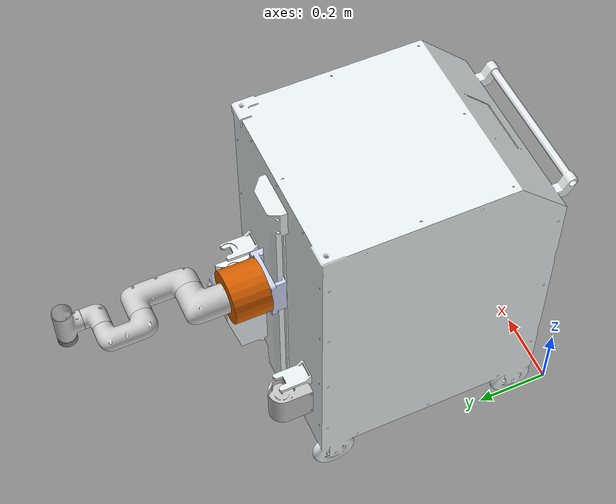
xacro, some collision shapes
<?xml version='1.0' encoding='utf-8'?>
<robot xmlns:xacro="http://ros.org/wiki/xacro" name="mycobot_pro">

  <xacro:macro name="base_arm_macro">
      <xacro:arg name="ros_namespace" default="mycobot_pro"/>
      <xacro:arg name="attach_to" default="robot_arm_mount"/>
      <xacro:arg name="camera_sensor" default="True"/>

      <!-- load base -->
      <xacro:include filename="$(find arm_plus_base_description)/urdf/abluo_urdf_1.xacro"/>

      <!-- load mycobot_pro robot attach to base -->
      <xacro:include filename="$(find arm_plus_base_description)/urdf/mycobot_robot_macro.xacro" />

       <!-- include gazebo transmissions -->
       <xacro:include filename="$(find arm_plus_base_description)/urdf/arm_plus_base.gazebo.xacro"/>
      <xacro:mycobot_pro_robot_macro camera_sensor="$(arg camera_sensor)" attach_to="$(arg attach_to)" xyz="0 0.015 0" rpy="-1.5707 1.5707 0"/>
  </xacro:macro>
  <xacro:base_arm_macro/>

</robot>

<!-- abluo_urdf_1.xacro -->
<robot xmlns:xacro="http://www.ros.org/wiki/xacro" name="abluo_urdf_1">
  <xacro:property name="width" value=".2" />
  <link name="base_link">
    <inertial>
      <origin xyz="0.314368340132374 0.377555022857893 0.400452017692568" rpy="0 0 0" />
      <mass value="30" />
      <inertia ixx="0.54665417885733" ixy="1.4238821137223E-07" ixz="-0.000131159040413172" iyy="0.46363983536376" iyz="-0.00931413578840215" izz="0.256005962598474" />
    </inertial>
    <visual>
      <origin xyz="0 0 0" rpy="0 0 0" />
      <geometry>
        <mesh filename="package://abluo_urdf_1/meshes/base_link.STL" />
      </geometry>
      <material name="">
        <color rgba="0.898039215686275 0.92156862745098 0.929411764705882 1" />
      </material>
    </visual>
    <collision>
      <origin xyz="0 0 0" rpy="0 0 0" />
      <geometry>
        <mesh filename="package://abluo_urdf_1/meshes/base_link.STL" />
      </geometry>
    </collision>
  </link>
  <link name="tool_holder">
    <inertial>
      <origin xyz="-5.4328E-05 0.035446 -0.00021215" rpy="0 0 0" />
      <mass value="0.1248" />
      <inertia ixx="0.0001414" ixy="-1.5081E-07" ixz="1.4383E-09" iyy="0.00012456" iyz="6.236E-07" izz="0.00022858" />
    </inertial>
    <visual>
      <origin xyz="0 0 0" rpy="0 0 0" />
      <geometry>
        <mesh filename="package://abluo_urdf_1/meshes/tool_holder.STL" />
      </geometry>
      <material name="">
        <color rgba="1 1 1 1" />
      </material>
    </visual>
    <collision>
      <origin xyz="0 0 0" rpy="0 0 0" />
      <geometry>
        <mesh filename="package://abluo_urdf_1/meshes/tool_holder.STL" />
      </geometry>
    </collision>
  </link>
  <joint name="tool_holder_to_trolley" type="fixed">
    <origin xyz="0.47532 0.67022 0.32681" rpy="0 0 0" />
    <parent link="base_link" />
    <child link="tool_holder" />
    <axis xyz="0 0 0" />
  </joint>
  <link name="bin">
    <inertial>
      <origin xyz="0.063 -0.071426 0.092008" rpy="0 0 0" />
      <mass value="0.26632" />
      <inertia ixx="0.0014744" ixy="8.8967E-19" ixz="4.6847E-18" iyy="0.0017467" iyz="-6.7797E-05" izz="0.0010769" />
    </inertial>
    <visual>
      <origin xyz="0 0 0" rpy="0 0 0" />
      <geometry>
        <mesh filename="package://abluo_urdf_1/meshes/bin.STL" />
      </geometry>
      <material name="">
        <color rgba="0.79216 0.81961 0.93333 1" />
      </material>
    </visual>
    <collision>
      <origin xyz="0 0 0" rpy="0 0 0" />
      <geometry>
        <mesh filename="package://abluo_urdf_1/meshes/bin.STL" />
      </geometry>
    </collision>
  </link>
  <joint name="bin_to_trolley" type="fixed">
    <origin xyz="0.41232 0.78622 0.051806" rpy="0 0 0" />
    <parent link="base_link" />
    <child link="bin" />
    <axis xyz="0 0 0" />
  </joint>
  <link name="refill">
    <inertial>
      <origin xyz="-0.099098 -0.032213 0.058669" rpy="0 0 0" />
      <mass value="0.48444" />
      <inertia ixx="0.00085088" ixy="1.1098E-17" ixz="1.6448E-18" iyy="0.00073833" iyz="3.4076E-05" izz="0.00065736" />
    </inertial>
    <visual>
      <origin xyz="0 0 0" rpy="0 0 0" />
      <geometry>
        <mesh filename="package://abluo_urdf_1/meshes/refill.STL" />
      </geometry>
      <material name="">
        <color rgba="0.75294 0.75294 0.75294 1" />
      </material>
    </visual>
    <collision>
      <origin xyz="0 0 0" rpy="0 0 0" />
      <geometry>
        <mesh filename="package://abluo_urdf_1/meshes/refill.STL" />
      </geometry>
    </collision>
  </link>
  <joint name="refill_to_trolley" type="fixed">
    <origin xyz="0.23641 0.73898 0.11878" rpy="0 0 0" />
    <parent link="base_link" />
    <child link="refill" />
    <axis xyz="0 0 0" />
  </joint>
  <link name="robot_arm_mount">
    <inertial>
      <origin xyz="0.01059 -0.0039437 -0.002491" rpy="0 0 0" />
      <mass value="0.42315" />
      <inertia ixx="0.00050278" ixy="6.7967E-05" ixz="-1.7444E-05" iyy="0.0011978" iyz="3.9255E-06" izz="0.00077881" />
    </inertial>
    <visual>
      <origin xyz="0 0 0" rpy="0 0 0" />
      <geometry>
        <mesh filename="package://abluo_urdf_1/meshes/robot_arm_mount.STL" />
      </geometry>
      <material name="">
        <color rgba="0.79216 0.81961 0.93333 1" />
      </material>
    </visual>
    <collision>
      <origin xyz="0 0 0" rpy="0 0 0" />
      <geometry>
        <mesh filename="package://abluo_urdf_1/meshes/robot_arm_mount.STL" />
      </geometry>
    </collision>
  </link>
  <joint name="robot_arm_mount_to_actuator" type="prismatic">
    <origin xyz="0.30617 0.70397 0.49087" rpy="0 0 0" />
    <parent link="base_link" />
    <child link="robot_arm_mount" />
    <axis xyz="0 0 1" />
    <limit lower="-0.2" upper="0.18" effort="100000" velocity="0.03" />
  </joint>
</robot>

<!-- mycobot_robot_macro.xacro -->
<robot xmlns:xacro="http://ros.org/wiki/xacro">
  <xacro:macro name="mycobot_pro_robot_macro" params="prefix:='' attach_to:='world' xyz:='0 0 0' rpy:='0 0 0' camera_sensor:=False ">

    <!-- include mycobot relative macros: -->
    <xacro:include filename="$(find arm_plus_base_description)/urdf/320_urdf/mycobot_pro_320.urdf" />

    <!-- add one world link if no 'attach_to' specified  -->
    <xacro:if value="${attach_to == 'world'}">
      <link name="world"/>
    </xacro:if>

    <joint name="${attach_to}_base_joint" type="fixed">
      <parent link="${attach_to}" />
      <child link = "base" />
      <origin xyz="${xyz}" rpy="${rpy}" />
    </joint>

  </xacro:macro>
</robot>

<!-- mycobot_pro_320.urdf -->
<robot xmlns:xacro="http://www.ros.org/wiki/xacro" name="mycobot_pro">
  <xacro:property name="width" value=".2" />

  <link name="base">
    <visual>
      <geometry>
        <mesh filename="package://mycobot_description/urdf/320_urdf/base.dae" />
      </geometry>
      <origin xyz="0 0 0 " rpy=" 0 0 0" />
    </visual>
    <collision>
      <origin xyz="0 0 0.05 " rpy=" 0 0 0" />
      <geometry>
        <cylinder length="0.102" radius="0.0725" />
      </geometry>
    </collision>
    <inertial>
      <mass value="0.92353" />
      <inertia ixx="1.0" ixy="0.0" ixz="0.0" iyy="1.0" iyz="0.0" izz="1.0" />
    </inertial>
  </link>

  <link name="link1">
    <visual>
      <geometry>
        <mesh filename="package://mycobot_description/urdf/320_urdf/link1.dae" />
      </geometry>
      <origin xyz="0 0 0 " rpy=" 0 0 0" />
    </visual>
    <collision>
      <origin xyz="0 0 -0.02 " rpy=" 0 0 0" />
      <geometry>
        <cylinder length="0.106" radius="0.043" />
      </geometry>
    </collision>
    <inertial>
      <mass value="0.3331" />
      <inertia ixx="1.0" ixy="0.0" ixz="0.0" iyy="1.0" iyz="0.0" izz="1.0" />
    </inertial>
  </link>

  <link name="link2">
    <visual>
      <geometry>
        <mesh filename="package://mycobot_description/urdf/320_urdf/link2.dae" />
      </geometry>
      <origin xyz="0 0 0.0587 " rpy=" 0 0 3.1415926" />
    </visual>
    <collision>
      <origin xyz="0.07 0 0.095 " rpy=" 0 -1.5708 0" />
      <geometry>
        <cylinder length="0.18" radius="0.036" />
      </geometry>
    </collision>
    <inertial>
      <mass value="0.29389" />
      <inertia ixx="1.0" ixy="0.0" ixz="0.0" iyy="1.0" iyz="0.0" izz="1.0" />
    </inertial>
  </link>

  <link name="link3">
    <visual>
      <geometry>
        <mesh filename="package://mycobot_description/urdf/320_urdf/link3.dae" />
      </geometry>
      <origin xyz="0 0 0.038 " rpy=" 0 0 3.1415926" />
    </visual>
    <collision>
      <origin xyz="0.044 0 0 " rpy=" 0 -1.5708 0" />
      <geometry>
        <cylinder length="0.14" radius="0.0305" />
      </geometry>
    </collision>
    <inertial>
      <mass value="0.41605" />
      <inertia ixx="1.0" ixy="0.0" ixz="0.0" iyy="1.0" iyz="0.0" izz="1.0" />
    </inertial>
  </link>

  <link name="link4">
    <visual>
      <geometry>
        <mesh filename="package://mycobot_description/urdf/320_urdf/link4.dae" />
      </geometry>
      <origin xyz="0 -0.001 0 " rpy=" 0 0 0" />
    </visual>
    <collision>
      <origin xyz="0.0 -0.014 0 " rpy=" 0 -1.5708 1.5708" />
      <geometry>
        <cylinder length="0.083" radius="0.029" />
      </geometry>
    </collision>
    <inertial>
      <mass value="0.18777" />
      <inertia ixx="1.0" ixy="0.0" ixz="0.0" iyy="1.0" iyz="0.0" izz="1.0" />
    </inertial>
  </link>

  <link name="link5">
    <visual>
      <geometry>
        <mesh filename="package://mycobot_description/urdf/320_urdf/link5.dae" />
      </geometry>
      <origin xyz="0 0.002  0 " rpy=" 0  0 3.1415926" />
    </visual>
    <collision>
      <origin xyz="0 -0.01 0 " rpy=" 1.5708 1.5708 0" />
      <geometry>
        <cylinder length="0.0849" radius="0.029" />
      </geometry>
    </collision>
    <inertial>
      <mass value="0.22519" />
      <inertia ixx="1.0" ixy="0.0" ixz="0.0" iyy="1.0" iyz="0.0" izz="1.0" />
    </inertial>
  </link>

  <link name="link6">
    <visual>
      <geometry>
        <cylinder length="0.02" radius="0.026" />
      </geometry>
      <material name="grey">
        <color rgba="0.5 0.5 0.5 1" />
      </material>
      <origin xyz="0 0 -0.01 " rpy=" 0 0 0" />
    </visual>
    <collision>
      <origin xyz="0.0 0 -0.01 " rpy=" 0 0 0" />
      <geometry>
        <cylinder length="0.0225" radius="0.026" />
      </geometry>
    </collision>
    <inertial>
      <mass value="0.060102" />
      <inertia ixx="1.0" ixy="0.0" ixz="0.0" iyy="1.0" iyz="0.0" izz="1.0" />
    </inertial>
  </link>

  <joint name="joint2_to_joint1" type="revolute">
    <axis xyz="0 0 1" />
    <limit lower="-2.97" upper="2.97" effort="1000" velocity="3.14" />
    <parent link="base" />
    <child link="link1" />
    <origin xyz="0 0 0.17846" rpy="0 0 0" />
  </joint>

  <joint name="joint3_to_joint2" type="revolute">
    <axis xyz="0 0 1" />
    <limit lower="-2.79" upper="2.79" effort="1000" velocity="3.14" />
    <parent link="link1" />
    <child link="link2" />
    <origin xyz="0 0  0" rpy="0 -1.57080  1.57080" />
  </joint>

  <joint name="joint4_to_joint3" type="revolute">
    <axis xyz=" 0 0 1" />
    <limit lower="-2.79" upper="2.79" effort="1000" velocity="3.14" />
    <parent link="link2" />
    <child link="link3" />
    <origin xyz="0.13635 0 0   " rpy="0 0 0" />
  </joint>

  <joint name="joint5_to_joint4" type="revolute">
    <axis xyz=" 0 0 1" />
    <limit lower="-2.79" upper="2.79" effort="1000" velocity="3.14" />
    <parent link="link3" />
    <child link="link4" />
    <origin xyz="0.1 0  0.090" rpy="0 0 1.57080" />
  </joint>

  <joint name="joint6_to_joint5" type="revolute">
    <axis xyz="0 0 1" />
    <limit lower="-2.97" upper="2.97" effort="1000" velocity="3.14" />
    <parent link="link4" />
    <child link="link5" />
    <origin xyz="0 -0.08515 0" rpy="1.57080 -1.57080 0" />
  </joint>

  <joint name="joint6output_to_joint6" type="revolute">
    <axis xyz="0 0 1" />
    <limit lower="-3.05" upper="3.05" effort="1000" velocity="3.14" />
    <parent link="link5" />
    <child link="link6" />
    <origin xyz="0 0.06 0" rpy="-1.57080 0 0 " />
  </joint>

  <!-- Transmission -->
</robot>
